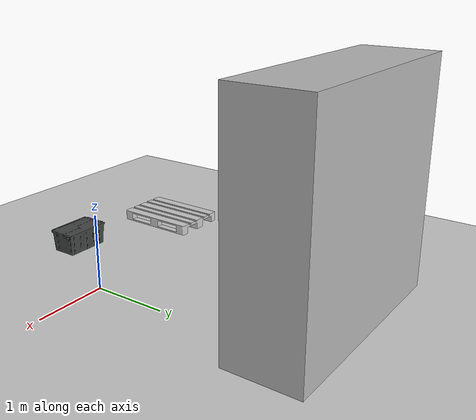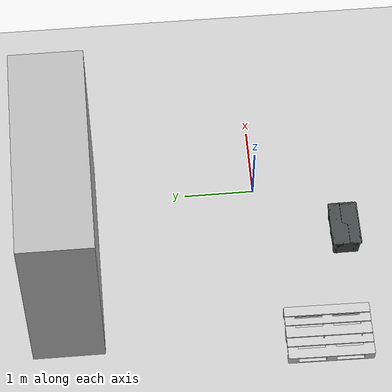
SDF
<sdf version="1.7">
 <world name="default">
  <light name="sun" type="directional">
   <pose>0 0 10 0 -0 0</pose>
   <diffuse>0.8 0.8 0.8 1</diffuse>
   <specular>0.2 0.2 0.2 1</specular>
   <attenuation>
    <range>1000</range>
    <constant>0.9</constant>
    <linear>0.01</linear>
    <quadratic>0.001</quadratic>
   </attenuation>
   <direction>-0.5 0.1 -0.9</direction>
   <spot><inner_angle>0</inner_angle><outer_angle>0</outer_angle><falloff>0</falloff></spot>
  </light>
  <model name="ground_plane">
   <static>1</static>
   <link name="link">
    <collision name="collision">
     <geometry><plane><normal>0 0 1</normal><size>100 100</size></plane></geometry>
     <surface>
      <contact><collide_bitmask>65535</collide_bitmask></contact>
      <friction><ode><mu>100</mu><mu2>50</mu2></ode></friction>
     </surface>
    </collision>
    <visual name="visual">
     <cast_shadows>0</cast_shadows>
     <geometry><plane><normal>0 0 1</normal><size>100 100</size></plane></geometry>
     <material>
      <script><uri>file://media/materials/scripts/gazebo.material</uri><name>Gazebo/Grey</name></script>
     </material>
    </visual>
   </link>
  </model>
  <gravity>0 0 -9.8</gravity>
  <magnetic_field>6e-06 2.3e-05 -4.2e-05</magnetic_field>
  <atmosphere type="adiabatic"/>
  <physics type="ode">
   <max_step_size>0.001</max_step_size>
   <real_time_factor>1</real_time_factor>
   <real_time_update_rate>1000</real_time_update_rate>
  </physics>
  <scene><ambient>0.4 0.4 0.4 1</ambient><background>0.7 0.7 0.7 1</background><shadows>1</shadows></scene>
  <spherical_coordinates>
   <surface_model>EARTH_WGS84</surface_model>
   <latitude_deg>0</latitude_deg>
   <longitude_deg>0</longitude_deg>
   <elevation>0</elevation>
   <heading_deg>0</heading_deg>
  </spherical_coordinates>
  <model name="grey_tote">
   <link name="link">
    <inertial>
     <pose>0 0 0.14155 0 -0 0</pose>
     <mass>3.53802</mass>
     <inertia>
      <ixx>0.0688358</ixx>
      <ixy>0</ixy>
      <ixz>0</ixz>
      <iyy>0.139596</iyy>
      <iyz>0</iyz>
      <izz>0.155909</izz>
     </inertia>
    </inertial>
    <collision name="lid">
     <pose>0 0 0.28958 0 -0 0</pose>
     <geometry><box><size>0.67768 0.41298 0.01588</size></box></geometry>
    </collision>
    <collision name="lid_lip_1">
     <pose>0 0.20063 0.3048 0 -0 0</pose>
     <geometry><box><size>0.65068 0.0105 0.0127</size></box></geometry>
    </collision>
    <collision name="lid_lip_2">
     <pose>0 -0.20063 0.3048 0 -0 0</pose>
     <geometry><box><size>0.65068 0.0105 0.0127</size></box></geometry>
    </collision>
    <collision name="lid_lip_3">
     <pose>0.32585 0 0.3048 0 -0 0</pose>
     <geometry><box><size>0.02602 0.31202 0.0127</size></box></geometry>
    </collision>
    <collision name="lid_lip_4">
     <pose>-0.32585 0 0.3048 0 -0 0</pose>
     <geometry><box><size>0.02602 0.31202 0.0127</size></box></geometry>
    </collision>
    <collision name="side_wall_1">
     <pose>0 -0.18 0.14155 0.061147 -0 0</pose>
     <geometry><box><size>0.58404 0.02602 0.283099</size></box></geometry>
    </collision>
    <collision name="side_wall_2">
     <pose>0 0.18 0.14155 -0.061147 0 0</pose>
     <geometry><box><size>0.58404 0.02602 0.283099</size></box></geometry>
    </collision>
    <collision name="side_wall_3">
     <pose>0.305 0 0.14155 0 0.061147 0</pose>
     <geometry><box><size>0.02602 0.33046 0.283099</size></box></geometry>
    </collision>
    <collision name="side_wall_4">
     <pose>-0.305 0 0.14155 0 -0.061147 0</pose>
     <geometry><box><size>0.02602 0.33046 0.283099</size></box></geometry>
    </collision>
    <collision name="bottom">
     <pose>0 0 0.01 0 -0 0</pose>
     <geometry><box><size>0.58404 0.33046 0.02</size></box></geometry>
    </collision>
    <collision name="corner_1">
     <pose>0.30202 -0.175 0.14155 0.061147 0.061147 -0</pose>
     <geometry><cylinder><radius>0.01268</radius><length>0.283099</length></cylinder></geometry>
    </collision>
    <collision name="corner_2">
     <pose>-0.30202 -0.175 0.14155 0.061147 -0.061147 0</pose>
     <geometry><cylinder><radius>0.01268</radius><length>0.283099</length></cylinder></geometry>
    </collision>
    <collision name="corner_3">
     <pose>-0.30202 0.175 0.14155 -0.061147 -0.061147 -0</pose>
     <geometry><cylinder><radius>0.01268</radius><length>0.283099</length></cylinder></geometry>
    </collision>
    <collision name="corner_4">
     <pose>0.30202 0.175 0.14155 -0.061147 0.061147 0</pose>
     <geometry><cylinder><radius>0.01268</radius><length>0.283099</length></cylinder></geometry>
    </collision>
    <visual name="visual"><geometry><mesh><uri>model://grey_tote/meshes/tote.dae</uri></mesh></geometry></visual>
   </link>
   <pose>-0.805271 -1.22291 0.000566 0 -0 0</pose>
  </model>
  <model name="euro_pallet">
   <link name="link">
    <inertial>
     <mass>20</mass>
     <inertia><ixx>2.43</ixx><ixy>0</ixy><ixz>0</ixz><iyy>1.1</iyy><iyz>0</iyz><izz>3.47</izz></inertia>
    </inertial>
    <collision name="collision">
     <pose>0 0 0.05 0 -0 0</pose>
     <geometry><mesh><uri>model://euro_pallet/meshes/pallet.dae</uri><scale>0.1 0.1 0.1</scale></mesh></geometry>
    </collision>
    <visual name="visual">
     <pose>0 0 0.05 0 -0 0</pose>
     <geometry><mesh><uri>model://euro_pallet/meshes/pallet.dae</uri><scale>0.1 0.1 0.1</scale></mesh></geometry>
    </visual>
   </link>
   <pose>-2.39844 -0.81583 0.071999 1e-06 -8e-06 -0.013016</pose>
  </model>
  <model name="brick_box_3x1x3">
   <static>1</static>
   <link name="chassis">
    <pose>0 0 1.5 0 -0 0</pose>
    <collision name="collision"><geometry><box><size>3 1 3</size></box></geometry></collision>
    <visual name="visual">
     <geometry><mesh><uri>model://brick_box_3x1x3/meshes/simple_box.dae</uri><scale>3 1 3</scale></mesh></geometry>
     <material>
      <script>
       <uri>model://brick_box_3x1x3/materials/scripts</uri>
       <uri>model://brick_box_3x1x3/materials/textures</uri>
       <name>BrickBox/Diffuse</name>
      </script>
     </material>
    </visual>
   </link>
   <pose>-0.93236 2.78859 0 0 -0 0</pose>
  </model>
 </world>
</sdf>
